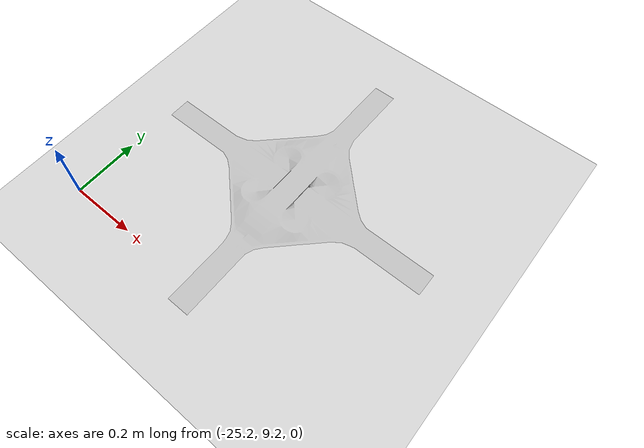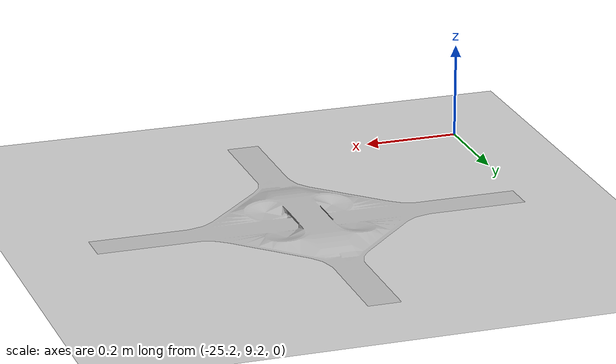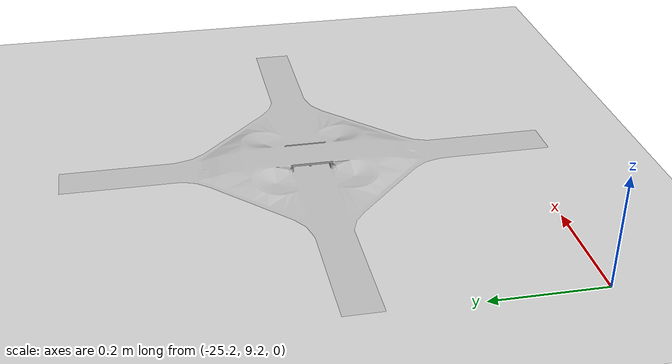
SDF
<sdf version="1.7">
 <world name="default">
  <light name="sun" type="directional">
   <pose>0 0 10 0 -0 0</pose>
   <diffuse>1 1 1 1</diffuse>
   <specular>0.1 0.1 0.1 1</specular>
   <attenuation>
    <range>1000</range>
    <constant>0.9</constant>
    <linear>0.01</linear>
    <quadratic>0.001</quadratic>
   </attenuation>
   <direction>-0.5 0.5 -1</direction>
   <spot><inner_angle>0</inner_angle><outer_angle>0</outer_angle><falloff>0</falloff></spot>
  </light>
  <model name="ground_plane">
   <static>1</static>
   <link name="link">
    <collision name="collision">
     <geometry><plane><normal>0 0 1</normal><size>100 100</size></plane></geometry>
     <surface>
      <contact><collide_bitmask>65535</collide_bitmask></contact>
      <friction><ode><mu>100</mu><mu2>50</mu2></ode></friction>
     </surface>
    </collision>
    <visual name="visual">
     <cast_shadows>0</cast_shadows>
     <geometry><plane><normal>0 0 1</normal><size>100 100</size></plane></geometry>
     <material>
      <script><uri>file://media/materials/scripts/gazebo.material</uri><name>Gazebo/Grey</name></script>
     </material>
    </visual>
   </link>
  </model>
  <gravity>0 0 -9.8</gravity>
  <magnetic_field>6e-06 2.3e-05 -4.2e-05</magnetic_field>
  <atmosphere type="adiabatic"/>
  <physics type="ode">
   <max_step_size>0.001</max_step_size>
   <real_time_factor>1</real_time_factor>
   <real_time_update_rate>1000</real_time_update_rate>
  </physics>
  <scene><ambient>0.4 0.4 0.4 1</ambient><background>0.7 0.7 0.7 1</background><shadows>1</shadows></scene>
  <audio><device>default</device></audio>
  <spherical_coordinates>
   <surface_model>EARTH_WGS84</surface_model>
   <latitude_deg>0</latitude_deg>
   <longitude_deg>0</longitude_deg>
   <elevation>0</elevation>
   <heading_deg>0</heading_deg>
  </spherical_coordinates>
  <plugin name="gazebo_ros_factory" filename="libgazebo_ros_factory.so">
   <ros><namespace>/</namespace></ros>
  </plugin>
  <model name="cloverleaf_interchange">
   <static>1</static>
   <link name="link">
    <collision name="collision">
     <geometry>
      <mesh>
       <uri>model://cloverleaf_interchange/meshes/cloverleaf.obj</uri>
       <scale>0.0254 0.0254 0.0254</scale>
      </mesh>
     </geometry>
    </collision>
    <visual name="visual">
     <geometry>
      <mesh>
       <uri>model://cloverleaf_interchange/meshes/cloverleaf.obj</uri>
       <scale>0.0254 0.0254 0.0254</scale>
      </mesh>
     </geometry>
    </visual>
   </link>
   <pose>-24.7223 9.87908 0 0 -0 0</pose>
  </model>
 </world>
</sdf>
